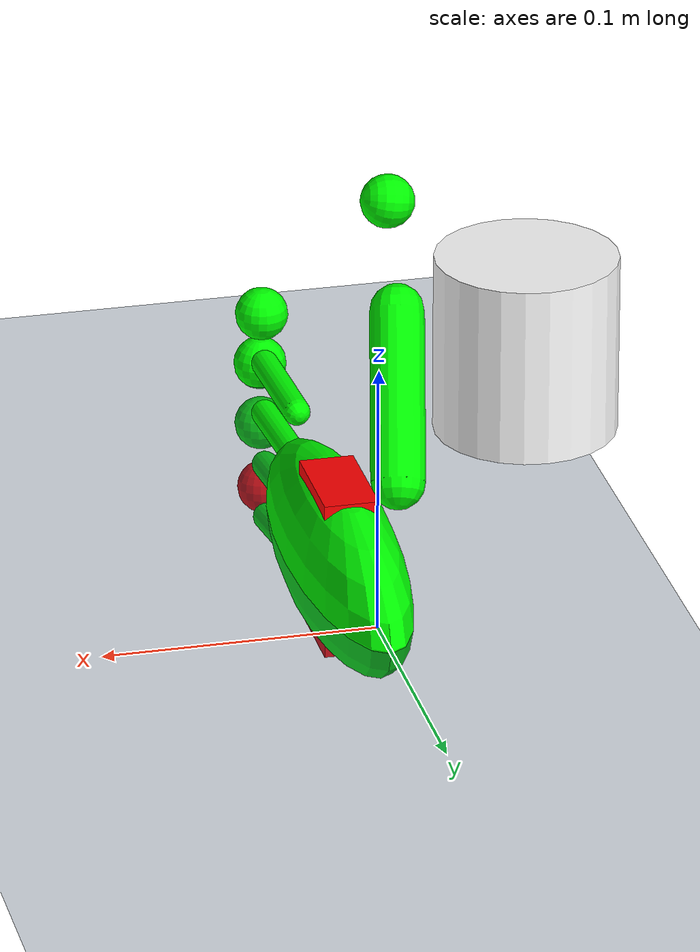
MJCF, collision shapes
<mujoco>
    <include file="inspire_hand_left.xml" />

    <option timestep="0.005" iterations="5" ls_iterations="50" integrator="implicitfast">
        <flag eulerdamp="disable" />
    </option>

    <visual>
        <headlight diffuse="0.6 0.6 0.6" ambient="0.1 0.1 0.1" specular="0.9 0.9 0.9" />
        <rgba haze="0.15 0.25 0.35 1" />
        <global azimuth="140" elevation="-20" />
    </visual>

    <asset>
        <texture type="skybox" builtin="gradient" rgb1="0.3 0.5 0.7" rgb2="0 0 0" width="512"
            height="3072" />
        <texture type="2d" name="groundplane" builtin="checker" mark="edge" rgb1="0.2 0.3 0.4"
            rgb2="0.1 0.2 0.3"
            markrgb="0.8 0.8 0.8" width="300" height="300" />
        <material name="groundplane" texture="groundplane" texuniform="true" texrepeat="5 5"
            reflectance="0.2" />
    </asset>

    <worldbody>
        <!-- The floor is slightly elevated to accommodate the reference mocap data for the
        humanoid_mocap task -->
        <light pos="0 0 3.5" dir="0 0 -1" directional="false" />
        <geom name="floor" size="0 0 0.05" pos="0 0 0.0" type="plane" material="groundplane"
        />
        <body name="object" pos="0 0.2 0.2">
            <freejoint />
            <camera name="track" pos="0 -.6 .3" xyaxes="1 0 0 0 1 2" mode="track" />
            <geom name="object" type="cylinder" density="1000" size="0.03 0.03"
                rgba="1.0 1.0 1.0 1" pos="0 0 0" />
        </body>
    </worldbody>

    <!-- manually specify the contact pairs -->
    <contact>
        <!-- mandatory finger tip collision, enable condim=4 for pinch motion with thumb and index
        finger -->
        <pair name="left_thumb_collision_box" geom1="left_thumb_collision" geom2="object"
            solref="0.008 1"
            friction="1.0 1.0 0.1" condim="4" />
        <pair name="left_index_collision_box" geom1="left_index_collision" geom2="object"
            solref="0.008 1"
            friction="1.0 1.0 0.1" condim="4" />
        <pair name="left_middle_collision_box" geom1="left_middle_collision" geom2="object"
            solref="0.008 1"
            friction="1.0 1.0" condim="3" />
        <pair name="left_ring_collision_box" geom1="left_ring_collision" geom2="object"
            solref="0.008 1"
            friction="1.0 1.0" condim="3" />
        <pair name="left_pinky_collision_box" geom1="left_pinky_collision" geom2="object"
            solref="0.008 1"
            friction="1 1" condim="3" />
        <pair name="object_ground_contact" geom1="object" geom2="floor" solref="0.008 1"
            friction="1 1" condim="3" />

        <!-- optional intermediate collision, mainly for power grasp-->
        <pair name="left_thumb_intermediate_collision_box"
            geom1="left_thumb_intermediate_collision"
            geom2="object" solref="0.008 1"
            friction="1.0 1.0 0.1" condim="3" />
        <pair name="left_index_intermediate_collision_box"
            geom1="left_index_intermediate_collision"
            geom2="object" solref="0.008 1"
            friction="1.0 1.0 0.1" condim="3" />
        <pair name="left_middle_intermediate_collision_box"
            geom1="left_middle_intermediate_collision"
            geom2="object" solref="0.008 1"
            friction="1.0 1.0 0.1" condim="3" />
        <pair name="left_ring_intermediate_collision_box"
            geom1="left_ring_intermediate_collision"
            geom2="object" solref="0.008 1"
            friction="1.0 1.0 0.1" condim="3" />
        <pair name="left_pinky_intermediate_collision_box"
            geom1="left_pinky_intermediate_collision"
            geom2="object" solref="0.008 1"
            friction="1.0 1.0 0.1" condim="3" />
        <pair name="left_palm_collision_box" geom1="left_palm_collision" geom2="object"
            solref="0.008 1"
            friction="1.0 1.0 0.1" condim="3" />
    </contact>

    <keyframe>
        <key name="home"
            qpos="-6.63107e-06 -1.16894e-06 0.140809 0.695408 0.758181 1.00519 1.02936 0.407802 0.29024 0.232091 0.6372 0.79822 0.592757 0.559556 0.853474 0.897017 0.927475 1.16616 0.153818 -0.0780772 0.0133776 0.474541 0.504394 0.537479 0.481158"
            qvel="1.80906e-07 2.27134e-10 4.80344e-07 -4.78929e-08 -4.78372e-08 1.14031e-08 1.39215e-08 5.20784e-08 2.88532e-08 1.78942e-08 -6.45009e-09 -1.03129e-08 5.33699e-14 4.83294e-14 1.19818e-13 7.48083e-14 9.14193e-14 5.04048e-14 0.000318646 0.000101408 -1.76223e-05 -0.000176121 -0.000490178 -0.000275083"
            ctrl="0 0 0.16 0.695296 0.757556 1.00549 1.02943 0.407841 0.290241 0.23208 0.63732 0.798316 0.59276 0.559558 0.853479 0.897019 0.927479 1.16616"
        />
    </keyframe>

</mujoco>

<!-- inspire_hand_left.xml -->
<mujoco model="h1">
    <compiler angle="radian" meshdir="./meshes/" />

    <option timestep="0.02" iterations="10" ls_iterations="50">
        <flag eulerdamp="disable" />
    </option>

    <default>
        <!-- disable all contacts and use explicit collision pairs -->
        <geom condim="1" contype="0" conaffinity="0" />
        <!-- with this setting, the response time is around 1s -->
        <position kp="300" dampratio="1.0" inheritrange="1" />
        <joint damping="0.0" armature="1.0" frictionloss="0.0" />
        <default class="mimic_left">
            <site size="0.01" type="sphere" rgba="1 0 0 1" group="0" />
        </default>
    </default>

    <asset>
        <mesh name="L_hand_base_link" content_type="model/stl" file="L_hand_base_link.STL" />
        <mesh name="Link11_L" content_type="model/stl" file="Link11_L.STL" />
        <mesh name="Link12_L" content_type="model/stl" file="Link12_L.STL" />
        <mesh name="Link13_L" content_type="model/stl" file="Link13_L.STL" />
        <mesh name="Link14_L" content_type="model/stl" file="Link14_L.STL" />
        <mesh name="Link15_L" content_type="model/stl" file="Link15_L.STL" />
        <mesh name="Link16_L" content_type="model/stl" file="Link16_L.STL" />
        <mesh name="Link17_L" content_type="model/stl" file="Link17_L.STL" />
        <mesh name="Link18_L" content_type="model/stl" file="Link18_L.STL" />
        <mesh name="Link19_L" content_type="model/stl" file="Link19_L.STL" />
        <mesh name="Link20_L" content_type="model/stl" file="Link20_L.STL" />
        <mesh name="Link21_L" content_type="model/stl" file="Link21_L.STL" />
        <mesh name="Link22_L" content_type="model/stl" file="Link22_L.STL" />
    </asset>

    <worldbody>
        <body name="left_hand_base" pos="0 0 0.0">
            <site name="left_palm" pos="0 -0.06 0" class="mimic_left" type="box"
                size="0.01 0.02 0.03" />
            <joint name="left_pos_x" type="slide" pos="0 0 0" axis="1 0 0" range="-1.0 1.0" />
            <joint name="left_pos_y" type="slide" pos="0 0 0" axis="0 1 0" range="-1.0 1.0" />
            <joint name="left_pos_z" type="slide" pos="0 0 0" axis="0 0 1" range="-1.0 1.0" />
            <!-- create rotation x, y, z joints -->
            <joint name="left_rot_x" type="hinge" pos="0 0 0" axis="1 0 0" range="-6.28 6.28" />
            <joint name="left_rot_y" type="hinge" pos="0 0 0" axis="0 1 0" range="-6.28 6.28" />
            <joint name="left_rot_z" type="hinge" pos="0 0 0" axis="0 0 1" range="-6.28 6.28" />
            <!-- add palm collision, use ellipsoid since mujoco mjx doesn't support box-cylinder
            collision -->
            <geom type="ellipsoid" name="left_palm_collision" size="0.02 0.08 0.03" pos="0 -0.06 0"
                contype="0" conaffinity="0" group="3" density="0" rgba="0 1 0 1" />
            <geom type="mesh" contype="0" conaffinity="0" group="1" density="0" rgba="0.1 0.1 0.1 1"
                mesh="L_hand_base_link" />
            <geom type="mesh" rgba="0.1 0.1 0.1 1" mesh="L_hand_base_link" />
            <body name="left_thumb_proximal_base" pos="-0.01696 -0.0691 0.02045"
                quat="0.499998 0.5 -0.5 0.500002">
                <inertial pos="0.0048817 0.00038782 -0.00722"
                    quat="0.445981 0.352284 0.495833 0.656617"
                    mass="0.0018869" diaginertia="8.66031e-08 6.87331e-08 4.94199e-08" />
                <joint name="left_thumb_proximal_yaw_joint" pos="0 0 0" axis="0 0 1"
                    range="-0.1 1.3" />
                <geom type="mesh" contype="0" conaffinity="0" group="1" density="0"
                    rgba="0.1 0.1 0.1 1"
                    mesh="Link11_L" />
                <geom type="mesh" rgba="0.1 0.1 0.1 1" mesh="Link11_L" />
                <body name="left_thumb_proximal" pos="0.0099867 0.0098242 -0.0089"
                    quat="0.704571 -0.704573 -0.0598169 0.0598167">
                    <inertial pos="0.021936 -0.01279 -0.0080386"
                        quat="0.25452 0.660687 -0.251949 0.659723"
                        mass="0.0066101" diaginertia="2.78701e-06 2.44024e-06 8.6466e-07" />
                    <joint name="left_thumb_proximal_pitch_joint" pos="0 0 0" axis="0 0 -1"
                        range="0 0.5" />
                    <geom type="mesh" contype="0" conaffinity="0" group="1" density="0"
                        rgba="0.1 0.1 0.1 1"
                        mesh="Link12_L" />
                    <geom type="mesh" rgba="0.1 0.1 0.1 1" mesh="Link12_L" />
                    <geom name="left_thumb_intermediate_collision" type="capsule"
                        fromto="-0.003140 0.002501 -0.005 0.047924 -0.035228 -0.005"
                        size="0.01" contype="0" conaffinity="0" group="3" density="0"
                        rgba="0 1 0 1" />
                    <body name="left_thumb_intermediate" pos="0.04407 -0.034553 -0.0008">
                        <inertial pos="0.0095531 0.0016282 -0.0072002"
                            quat="0.30738 0.636732 -0.307526 0.636803" mass="0.0037844"
                            diaginertia="4.6532e-07 4.48114e-07 2.45646e-07" />
                        <joint name="left_thumb_intermediate_joint" pos="0 0 0" axis="0 0 -1"
                            range="0 0.8" />
                        <geom type="mesh" contype="0" conaffinity="0" group="1" density="0"
                            rgba="0.1 0.1 0.1 1"
                            mesh="Link13_L" />
                        <geom type="mesh" rgba="0.1 0.1 0.1 1" mesh="Link13_L" />
                        <body name="left_thumb_distal" pos="0.020248 -0.010156 -0.0012">
                            <inertial pos="0.0092888 -0.004953 -0.0060033"
                                quat="0.266264 0.65596 -0.262836 0.655544" mass="0.003344"
                                diaginertia="2.0026e-07 1.95246e-07 8.1594e-08" />
                            <joint name="left_thumb_distal_joint" pos="0 0 0" axis="0 0 -1"
                                range="0 1.2" />
                            <geom type="mesh" contype="0" conaffinity="0" group="1" density="0"
                                rgba="0.1 0.1 0.1 1"
                                mesh="Link14_L" />
                            <geom type="mesh" rgba="0.1 0.1 0.1 1" mesh="Link14_L" />
                            <geom name="left_thumb_collision" size="0.01"
                                pos="0.0159104 -0.0156076 -0.00599021"
                                contype="0" conaffinity="0"
                                group="3" density="0" rgba="0 1 0 1" />
                            <site name="left_thumb_tip" pos="0.0159104 -0.0156076 -0.00599021"
                                class="mimic_left" />
                        </body>
                    </body>
                </body>
            </body>
            <body name="left_index_proximal" pos="0.00028533 -0.13653 0.032268"
                quat="0.999848 -0.0174526 0 0">
                <inertial pos="0.0012971 -0.011934 -0.0059998"
                    quat="0.489677 0.510115 -0.489692 0.510099"
                    mass="0.0042405" diaginertia="6.9402e-07 6.62904e-07 2.10916e-07" />
                <joint name="left_index_proximal_joint" pos="0 0 0" axis="0 0 -1" range="0 1.7" />
                <geom type="mesh" contype="0" conaffinity="0" group="1" density="0"
                    rgba="0.1 0.1 0.1 1"
                    mesh="Link15_L" />
                <geom type="mesh" rgba="0.1 0.1 0.1 1" mesh="Link15_L" />
                <geom name="left_index_intermediate_collision" type="capsule"
                    fromto="-0.000437 0.009413 -0.005 0.002139 -0.032175 -0.005"
                    size="0.005" contype="0" conaffinity="0" group="3" density="0"
                    rgba="0 1 0 1" />
                <body name="left_index_intermediate" pos="-0.0024229 -0.032041 -0.001">
                    <inertial pos="0.0021753 -0.019567 -0.005"
                        quat="0.528694 0.469555 -0.528694 0.469555"
                        mass="0.0045682" diaginertia="7.8176e-07 7.72427e-07 8.47209e-08" />
                    <joint name="left_index_intermediate_joint" pos="0 0 0" axis="0 0 -1"
                        range="0 1.7" />
                    <geom type="mesh" contype="0" conaffinity="0" group="1" density="0"
                        rgba="0.1 0.1 0.1 1"
                        mesh="Link16_L" />
                    <geom type="mesh" rgba="0.1 0.1 0.1 1" mesh="Link16_L" />
                    <geom name="left_index_collision" size="0.01"
                        pos="-0.00412053 -0.0433132 -0.00501047"
                        contype="0" conaffinity="0"
                        group="3" density="0" rgba="0 1 0 1" />
                    <site name="left_index_tip" pos="-0.00412053 -0.0433132 -0.00501047"
                        class="mimic_left" />
                </body>
            </body>
            <body name="left_middle_proximal" pos="0.00028533 -0.1371 0.01295">
                <inertial pos="0.0012971 -0.011934 -0.0059999"
                    quat="0.489677 0.510115 -0.489692 0.510099"
                    mass="0.0042405" diaginertia="6.9402e-07 6.62904e-07 2.10916e-07" />
                <joint name="left_middle_proximal_joint" pos="0 0 0" axis="0 0 -1" range="0 1.7" />
                <geom type="mesh" contype="0" conaffinity="0" group="1" density="0"
                    rgba="0.1 0.1 0.1 1"
                    mesh="Link17_L" />
                <geom type="mesh" rgba="0.1 0.1 0.1 1" mesh="Link17_L" />
                <geom name="left_middle_intermediate_collision" type="capsule"
                    fromto="-0.000437 0.009413 -0.005 0.002139 -0.032175 -0.005"
                    size="0.005" contype="0" conaffinity="0" group="3" density="0"
                    rgba="0 1 0 1" />
                <body name="left_middle_intermediate" pos="-0.0024229 -0.032041 -0.001">
                    <inertial pos="0.001921 -0.020796 -0.0049999"
                        quat="0.531603 0.466115 -0.531728 0.466262"
                        mass="0.0050397" diaginertia="9.8385e-07 9.73288e-07 9.14016e-08" />
                    <joint name="left_middle_intermediate_joint" pos="0 0 0" axis="0 0 -1"
                        range="0 1.7" />
                    <geom type="mesh" contype="0" conaffinity="0" group="1" density="0"
                        rgba="0.1 0.1 0.1 1"
                        mesh="Link18_L" />
                    <geom type="mesh" rgba="0.1 0.1 0.1 1" mesh="Link18_L" />
                    <geom name="left_middle_collision" size="0.01"
                        pos="-0.00426879 -0.0466043 -0.00498678"
                        contype="0" conaffinity="0"
                        group="3" density="0" rgba="0 1 0 1" />
                    <site name="left_middle_tip" pos="-0.00426879 -0.0466043 -0.00498678"
                        class="mimic_left" />
                </body>
            </body>
            <body name="left_ring_proximal" pos="0.00028533 -0.13691 -0.0062872"
                quat="0.999657 0.026177 0 0">
                <inertial pos="0.0012971 -0.011934 -0.0059999"
                    quat="0.489677 0.510114 -0.489692 0.510099"
                    mass="0.0042405" diaginertia="6.9402e-07 6.62904e-07 2.10916e-07" />
                <joint name="left_ring_proximal_joint" pos="0 0 0" axis="0 0 -1" range="0 1.7" />
                <geom type="mesh" contype="0" conaffinity="0" group="1" density="0"
                    rgba="0.1 0.1 0.1 1"
                    mesh="Link19_L" />
                <geom type="mesh" rgba="0.1 0.1 0.1 1" mesh="Link19_L" />
                <geom name="left_ring_intermediate_collision" type="capsule"
                    fromto="-0.000437 0.009413 -0.005 0.002139 -0.032175 -0.005"
                    size="0.005" contype="0" conaffinity="0" group="3" density="0"
                    rgba="0 1 0 1" />
                <body name="left_ring_intermediate" pos="-0.0024229 -0.032041 -0.001">
                    <inertial pos="0.0021753 -0.019567 -0.005"
                        quat="0.528694 0.469556 -0.528694 0.469556"
                        mass="0.0045682" diaginertia="7.8176e-07 7.72437e-07 8.47208e-08" />
                    <joint name="left_ring_intermediate_joint" pos="0 0 0" axis="0 0 -1"
                        range="0 1.7" />
                    <geom type="mesh" contype="0" conaffinity="0" group="1" density="0"
                        rgba="0.1 0.1 0.1 1"
                        mesh="Link20_L" />
                    <geom type="mesh" rgba="0.1 0.1 0.1 1" mesh="Link20_L" />
                    <geom name="left_ring_collision" size="0.01"
                        pos="-0.00366554 -0.0433541 -0.00501047"
                        contype="0" conaffinity="0"
                        group="3" density="0" rgba="0 1 0 1" />
                    <site name="left_ring_tip" pos="-0.00366554 -0.0433541 -0.00501047"
                        class="mimic_left" />
                </body>
            </body>
            <body name="left_pinky_proximal" pos="0.00028533 -0.13571 -0.025488"
                quat="0.99863 0.0523361 0 0">
                <inertial pos="0.0012971 -0.011934 -0.0059999"
                    quat="0.489677 0.510114 -0.489692 0.510099"
                    mass="0.0042405" diaginertia="6.9402e-07 6.62904e-07 2.10916e-07" />
                <joint name="left_pinky_proximal_joint" pos="0 0 0" axis="0 0 -1" range="0 1.7" />
                <geom type="mesh" contype="0" conaffinity="0" group="1" density="0"
                    rgba="0.1 0.1 0.1 1"
                    mesh="Link21_L" />
                <geom type="mesh" rgba="0.1 0.1 0.1 1" mesh="Link21_L" />
                <geom name="left_pinky_intermediate_collision" type="capsule"
                    fromto="-0.000437 0.009413 -0.005 0.002139 -0.032175 -0.005"
                    size="0.005" contype="0" conaffinity="0" group="3" density="0"
                    rgba="0 1 0 1" />
                <body name="left_pinky_intermediate" pos="-0.0024229 -0.032041 -0.001">
                    <inertial pos="0.0024788 -0.016208 -0.0050001"
                        quat="0.526797 0.471683 -0.526793 0.471687"
                        mass="0.0036036" diaginertia="4.4881e-07 4.43809e-07 6.5736e-08" />
                    <joint name="left_pinky_intermediate_joint" pos="0 0 0" axis="0 0 -1"
                        range="0 1.7" />
                    <geom type="mesh" contype="0" conaffinity="0" group="1" density="0"
                        rgba="0.1 0.1 0.1 1"
                        mesh="Link22_L" />
                    <geom type="mesh" rgba="0.1 0.1 0.1 1" mesh="Link22_L" />
                    <geom name="left_pinky_collision" size="0.005"
                        pos="-0.00260734 -0.0362776 -0.00501047"
                        contype="0" conaffinity="0"
                        group="3" density="0" rgba="0 1 0 1" />
                    <site name="left_pinky_tip" pos="-0.00260734 -0.0362776 -0.00501047"
                        class="mimic_left" />
                </body>
            </body>
        </body>
    </worldbody>

    <actuator>
        <!-- Global position and rotation joints -->
        <position name="left_pos_x_position" joint="left_pos_x" />
        <position name="left_pos_y_position" joint="left_pos_y" />
        <position name="left_pos_z_position" joint="left_pos_z" />
        <position name="left_rot_x_position" joint="left_rot_x" />
        <position name="left_rot_y_position" joint="left_rot_y" />
        <position name="left_rot_z_position" joint="left_rot_z" />

        <!-- Thumb joints -->
        <position name="left_thumb_proximal_yaw_position" joint="left_thumb_proximal_yaw_joint" />
        <position name="left_thumb_proximal_pitch_position" joint="left_thumb_proximal_pitch_joint" />
        <position name="left_thumb_intermediate_position" joint="left_thumb_intermediate_joint" />
        <position name="left_thumb_distal_position" joint="left_thumb_distal_joint" />

        <!-- Index joints -->
        <position name="left_index_proximal_position" joint="left_index_proximal_joint" />
        <position name="left_index_intermediate_position" joint="left_index_intermediate_joint" />

        <!-- Middle joints -->
        <position name="left_middle_proximal_position" joint="left_middle_proximal_joint" />
        <position name="left_middle_intermediate_position" joint="left_middle_intermediate_joint" />

        <!-- Ring joints -->
        <position name="left_ring_proximal_position" joint="left_ring_proximal_joint" />
        <position name="left_ring_intermediate_position" joint="left_ring_intermediate_joint" />

        <!-- Pinky joints -->
        <position name="left_pinky_proximal_position" joint="left_pinky_proximal_joint" />
        <position name="left_pinky_intermediate_position" joint="left_pinky_intermediate_joint" />

    </actuator>
</mujoco>
